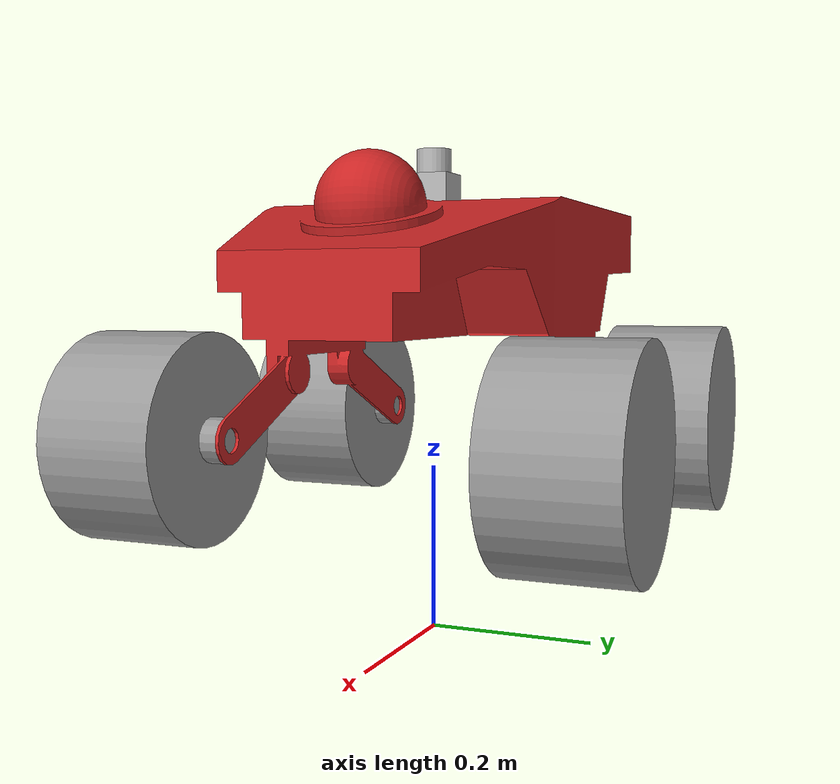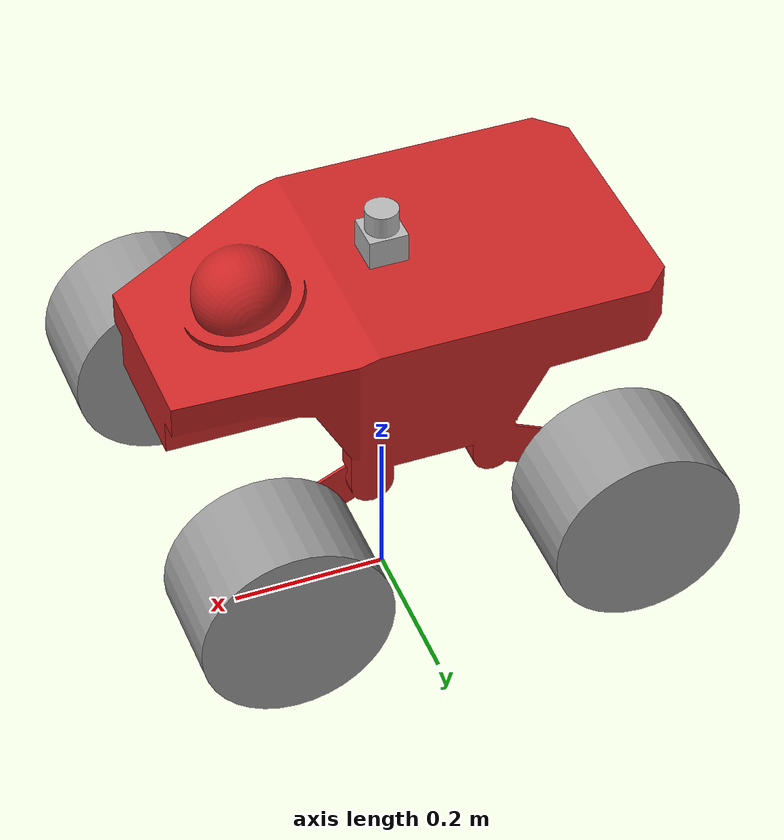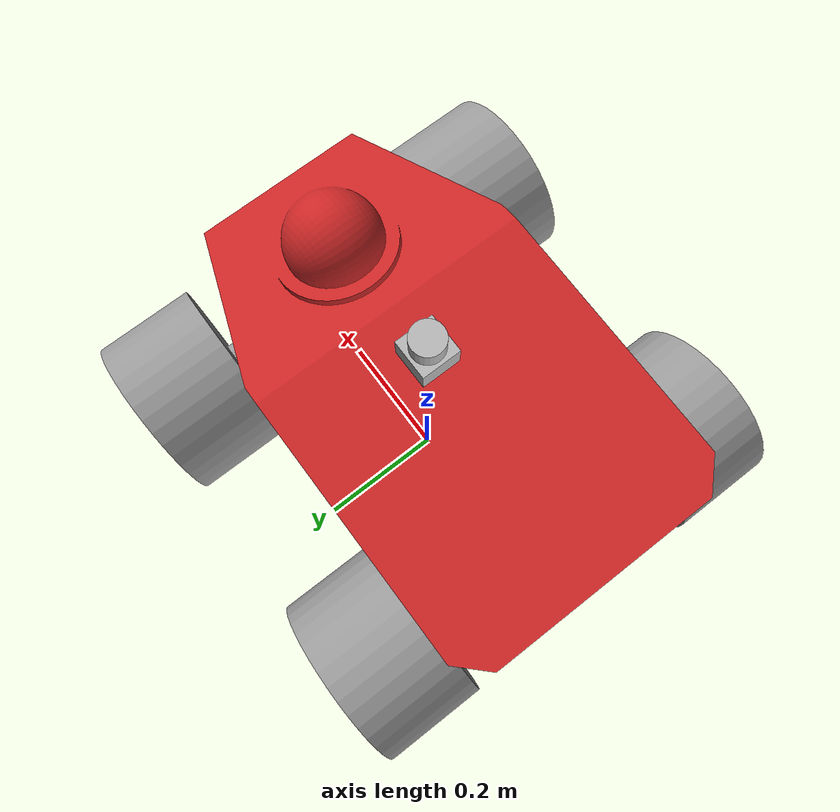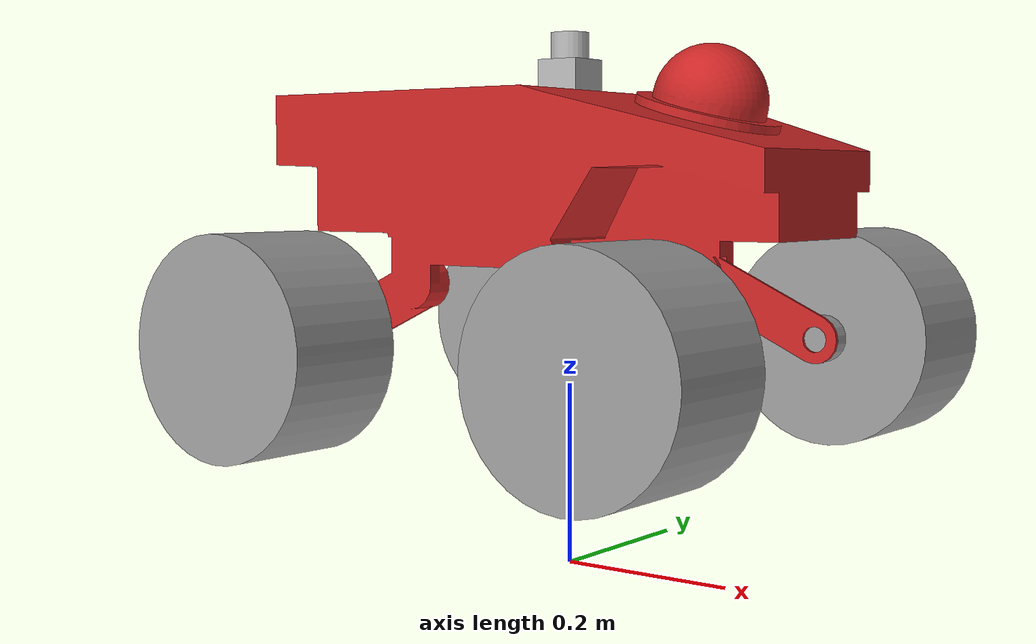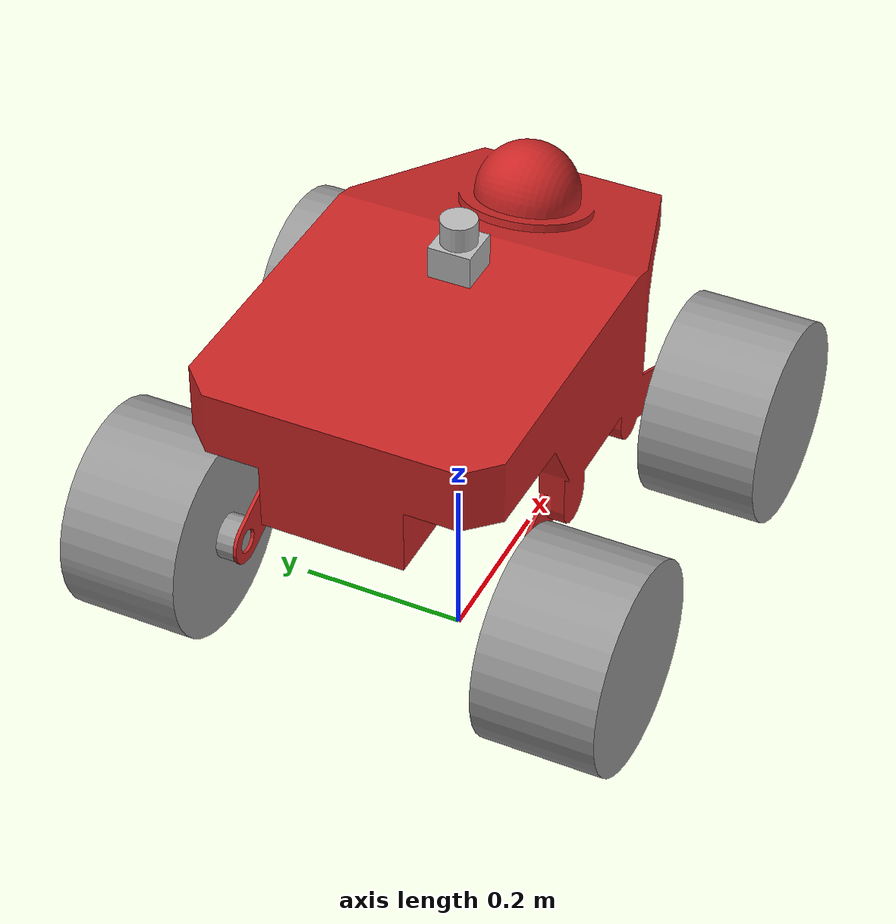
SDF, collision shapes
<?xml version="1.0"?>
<sdf version="1.3">
  <model name="summit_xl">
	<pose>0 0 0.2 0 0 0</pose>
    <static>false</static>
    <link name="base_footprint">
      <pose>0.000000 0.000000 0.050000 0.000000 0.000000 0.000000</pose>
      <inertial>
        <mass>25.012100</mass>
        <inertia>
          <ixx>1.456670</ixx>
          <ixy>0.004000</ixy>
          <ixz>0.000000</ixz>
          <iyy>6.918470</iyy>
          <iyz>0.000000</iyz>
          <izz>6.126300</izz>
        </inertia>
      </inertial>
      <collision name="collision">
        <geometry>
          <mesh>
            <scale>1.000000 1.000000 1.000000</scale>
            <uri>model://summit_xl_description/meshes/summit_xl_chassis_cam1.stl</uri>
          </mesh>
        </geometry>
        <surface>
          <contact>
            <ode/>
          </contact>
          <friction>
            <ode/>
          </friction>
        </surface>
      </collision>
      <visual name="visual">
        <geometry>
          <mesh>
            <scale>1.000000 1.000000 1.000000</scale>
            <uri>model://summit_xl_description/meshes/summit_xl_chassis_cam1.stl</uri>
          </mesh>
        </geometry>
        <material>
          <script>
            <name>Gazebo/Red</name>
            <uri>__default__</uri>
          </script>
        </material>
      </visual>
    </link>
    <link name="back_left_wheel">
      <pose>-0.223000 0.154000 0.050000 0.000000 0.000000 0.000000</pose>
      <inertial>
        <pose>0.000000 0.000000 0.000000 0.000000 0.000000 0.000000</pose>
        <mass>1.250000</mass>
        <inertia>
          <ixx>0.010937</ixx>
          <ixy>0.000000</ixy>
          <ixz>0.000000</ixz>
          <iyy>0.021125</iyy>
          <iyz>0.000000</iyz>
          <izz>0.010937</izz>
        </inertia>
      </inertial>
      <collision name="back_left_wheel_collision">
        <pose>0.000000 0.000000 0.000000 0.000000 0.000000 0.000000</pose>
        <geometry>
          <mesh>
            <scale>1.000000 1.000000 1.000000</scale>
            <uri>model://summit_xl_description/meshes/summit_xl_wheel.stl</uri>
          </mesh>
        </geometry>
        <surface>
          <contact>
            <ode/>
          </contact>
          <friction>
            <ode>
              <mu>100.000000</mu>
              <mu2>100.000000</mu2>
              <fdir1>1.000000 0.000000 0.000000</fdir1>
            </ode>
          </friction>
        </surface>
      </collision>
      <visual name="back_left_wheel_vis">
        <pose>0.000000 0.000000 0.000000 0.000000 0.000000 0.000000</pose>
        <geometry>
          <mesh>
            <scale>1.000000 1.000000 1.000000</scale>
            <uri>model://summit_xl_description/meshes/summit_xl_wheel.stl</uri>
          </mesh>
        </geometry>
        <material>
          <script>
            <name>Gazebo/Grey</name>
            <uri>__default__</uri>
          </script>
        </material>
      </visual>
      <gravity>1</gravity>
      <velocity_decay>
        <linear>0.000000</linear>
        <angular>0.000000</angular>
      </velocity_decay>
      <self_collide>0</self_collide>
    </link>

    <joint name="left_rear" type="revolute">
      <child>back_left_wheel</child>
      <parent>base_footprint</parent>
      <axis>
        <xyz>0.000000 1.000000 0.000000</xyz>
        <limit>
          <lower>-10000000000000000.000000</lower>
          <upper>10000000000000000.000000</upper>
        </limit>
        <dynamics/>
      </axis>
    </joint>

    <link name="back_right_wheel">
      <pose>-0.223000 -0.154000 0.050000 0.000000 0.000000 -3.141590</pose>
      <inertial>
        <pose>0.000000 0.000000 0.000000 0.000000 0.000000 0.000000</pose>
        <mass>1.250000</mass>
        <inertia>
          <ixx>0.010937</ixx>
          <ixy>0.000000</ixy>
          <ixz>0.000000</ixz>
          <iyy>0.021125</iyy>
          <iyz>0.000000</iyz>
          <izz>0.010937</izz>
        </inertia>
      </inertial>
      <collision name="back_right_wheel_collision">
        <pose>0.000000 0.000000 0.000000 0.000000 0.000000 0.000000</pose>
        <geometry>
          <mesh>
            <scale>1.000000 1.000000 1.000000</scale>
            <uri>model://summit_xl_description/meshes/summit_xl_wheel.stl</uri>
          </mesh>
        </geometry>
        <surface>
          <contact>
            <ode/>
          </contact>
          <friction>
            <ode>
              <mu>100.000000</mu>
              <mu2>100.000000</mu2>
              <fdir1>1.000000 0.000000 0.000000</fdir1>
            </ode>
          </friction>
        </surface>
      </collision>
      <visual name="back_right_wheel_vis">
        <pose>0.000000 0.000000 0.000000 0.000000 0.000000 0.000000</pose>
        <geometry>
          <mesh>
            <scale>1.000000 1.000000 1.000000</scale>
            <uri>model://summit_xl_description/meshes/summit_xl_wheel.stl</uri>
          </mesh>
        </geometry>
        <material>
          <script>
            <name>Gazebo/Grey</name>
            <uri>__default__</uri>
          </script>
        </material>
      </visual>
      <gravity>1</gravity>
      <velocity_decay>
        <linear>0.000000</linear>
        <angular>0.000000</angular>
      </velocity_decay>
      <self_collide>0</self_collide>
    </link>

    <joint name="right_rear" type="revolute">
      <child>back_right_wheel</child>
      <parent>base_footprint</parent>
      <axis>
        <xyz>0.000007 -1.000000 0.000000</xyz>
        <limit>
          <lower>-10000000000000000.000000</lower>
          <upper>10000000000000000.000000</upper>
        </limit>
        <dynamics/>
      </axis>
    </joint>

    <link name="front_left_wheel">
      <pose>0.223000 0.154000 0.050000 0.000000 0.000000 0.000000</pose>
      <inertial>
        <pose>0.000000 0.000000 0.000000 0.000000 0.000000 0.000000</pose>
        <mass>1.250000</mass>
        <inertia>
          <ixx>0.010937</ixx>
          <ixy>0.000000</ixy>
          <ixz>0.000000</ixz>
          <iyy>0.021125</iyy>
          <iyz>0.000000</iyz>
          <izz>0.010937</izz>
        </inertia>
      </inertial>
      <collision name="front_left_wheel_collision">
        <pose>0.000000 0.000000 0.000000 0.000000 0.000000 0.000000</pose>
        <geometry>
          <mesh>
            <scale>1.000000 1.000000 1.000000</scale>
            <uri>model://summit_xl_description/meshes/summit_xl_wheel.stl</uri>
          </mesh>
        </geometry>
        <surface>
          <contact>
            <ode/>
          </contact>
          <friction>
            <ode>
              <mu>100.000000</mu>
              <mu2>100.000000</mu2>
              <fdir1>1.000000 0.000000 0.000000</fdir1>
            </ode>
          </friction>
        </surface>
      </collision>
      <visual name="front_left_wheel_vis">
        <pose>0.000000 0.000000 0.000000 0.000000 0.000000 0.000000</pose>
        <geometry>
          <mesh>
            <scale>1.000000 1.000000 1.000000</scale>
            <uri>model://summit_xl_description/meshes/summit_xl_wheel.stl</uri>
          </mesh>
        </geometry>
        <material>
          <script>
            <name>Gazebo/Grey</name>
            <uri>__default__</uri>
          </script>
        </material>
      </visual>
      <gravity>1</gravity>
      <velocity_decay>
        <linear>0.000000</linear>
        <angular>0.000000</angular>
      </velocity_decay>
      <self_collide>0</self_collide>
    </link>

    <joint name="left_front" type="revolute">
      <child>front_left_wheel</child>
      <parent>base_footprint</parent>
      <axis>
        <xyz>0.000000 1.000000 0.000000</xyz>
        <limit>
          <lower>-10000000000000000.000000</lower>
          <upper>10000000000000000.000000</upper>
        </limit>
        <dynamics/>
      </axis>
    </joint>

    <link name="front_right_wheel">
      <pose>0.223000 -0.154000 0.050000 0.000000 0.000000 -3.141590</pose>
      <inertial>
        <pose>0.000000 0.000000 0.000000 0.000000 0.000000 0.000000</pose>
        <mass>1.250000</mass>
        <inertia>
          <ixx>0.010937</ixx>
          <ixy>0.000000</ixy>
          <ixz>0.000000</ixz>
          <iyy>0.021125</iyy>
          <iyz>0.000000</iyz>
          <izz>0.010937</izz>
        </inertia>
      </inertial>
      <collision name="front_right_wheel_collision">
        <pose>0.000000 0.000000 0.000000 0.000000 0.000000 0.000000</pose>
        <geometry>
          <mesh>
            <scale>1.000000 1.000000 1.000000</scale>
            <uri>model://summit_xl_description/meshes/summit_xl_wheel.stl</uri>
          </mesh>
        </geometry>
        <surface>
          <contact>
            <ode/>
          </contact>
          <friction>
            <ode>
              <mu>100.000000</mu>
              <mu2>100.000000</mu2>
              <fdir1>1.000000 0.000000 0.000000</fdir1>
            </ode>
          </friction>
        </surface>
      </collision>
      <visual name="front_right_wheel_vis">
        <pose>0.000000 0.000000 0.000000 0.000000 0.000000 0.000000</pose>
        <geometry>
          <mesh>
            <scale>1.000000 1.000000 1.000000</scale>
            <uri>model://summit_xl_description/meshes/summit_xl_wheel.stl</uri>
          </mesh>
        </geometry>
        <material>
          <script>
            <name>Gazebo/Grey</name>
            <uri>__default__</uri>
          </script>
        </material>
      </visual>
      <gravity>1</gravity>
      <velocity_decay>
        <linear>0.000000</linear>
        <angular>0.000000</angular>
      </velocity_decay>
      <self_collide>0</self_collide>
    </link>

    <joint name="right_front" type="revolute">
      <child>front_right_wheel</child>
      <parent>base_footprint</parent>
      <axis>
        <xyz>0.000007 -1.000000 0.000000</xyz>
        <limit>
          <lower>-10000000000000000.000000</lower>
          <upper>10000000000000000.000000</upper>
        </limit>
        <dynamics/>
      </axis>
    </joint>

    <plugin name="summit_xl_plugin" filename="libsummit_xl_plugin.so">
          <!-- parameters -->
    </plugin>

    <include>
      <uri>model://hokuyo</uri>
      <pose>0.0 0 0.35 0 0 0</pose>
    </include>

    <joint name="hokuyo_laser_joint" type="revolute">
      <child>hokuyo::link</child>
      <parent>base_footprint</parent>
	  <axis>
		<xyz>0 0 1</xyz>
		<limit>
		  <upper>0</upper>
		  <lower>0</lower>
		</limit>
          </axis>
    </joint>

  </model>
</sdf>

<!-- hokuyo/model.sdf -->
<sdf version="1.5">
  <model name="hokuyo">
    <pose>0 0 0.035 0 0 0</pose>
    <link name="link">
      <inertial>
        <mass>0.1</mass>
      </inertial>
      <visual name="visual">
        <geometry>
          <mesh>
            <uri>model://../model_source/models/hokuyo/meshes/hokuyo.dae</uri>
          </mesh>
        </geometry>
      </visual>
      <collision name="collision-base">
        <pose>0 0 -0.0145 0 0 0</pose>
        <geometry>
          <box>
            <size>0.05 0.05 0.041</size>
          </box>
        </geometry>
      </collision>
      <collision name="collision-top">
        <pose>0 0 0.0205 0 0 0</pose>
        <geometry>
          <cylinder>
            <radius>0.021</radius>
            <length>0.029</length>
          </cylinder>
        </geometry>
      </collision>
      <sensor name="laser" type="ray">
        <pose>0.01 0 0.0175 0 -0 0</pose>
        <ray>
          <scan>
            <horizontal>
              <samples>640</samples>
              <resolution>1</resolution>
              <min_angle>-2.26889</min_angle>
              <max_angle>2.268899</max_angle>
            </horizontal>
          </scan>
          <range>
            <min>0.08</min>
            <max>10</max>
            <resolution>0.01</resolution>
          </range>
        </ray>
        <plugin name="laser" filename="libRayPlugin.so" />
        <always_on>1</always_on>
        <update_rate>30</update_rate>
        <visualize>true</visualize>
      </sensor>
    </link>
  </model>
</sdf>
